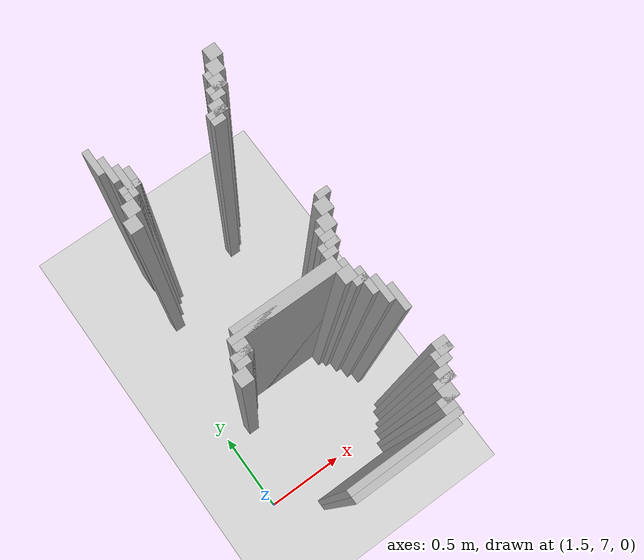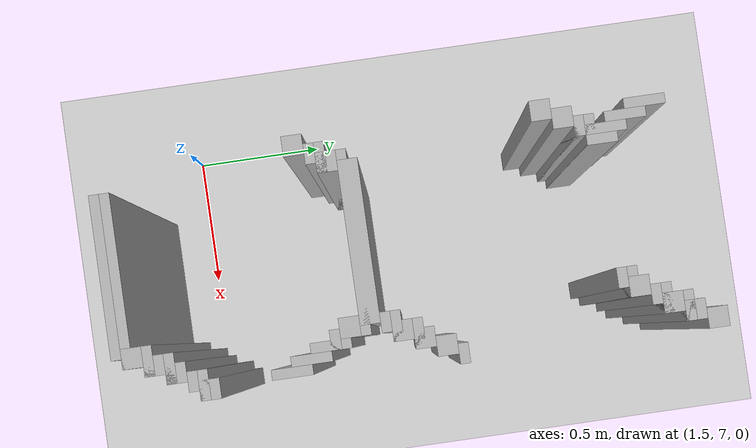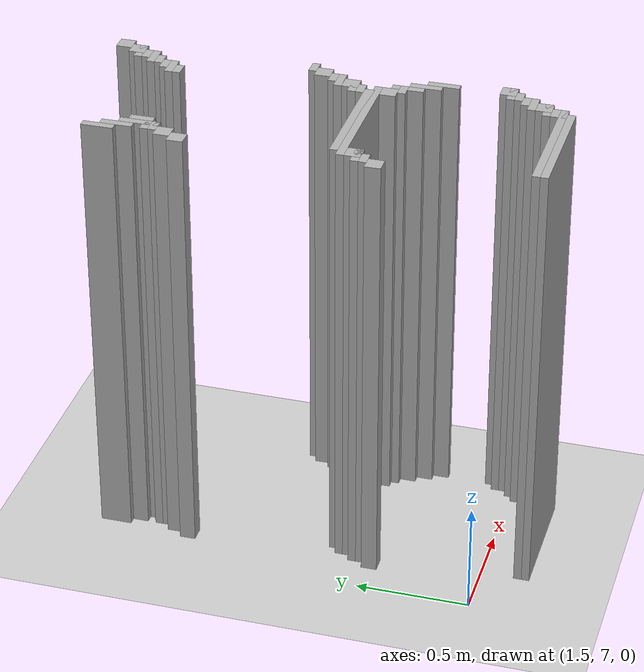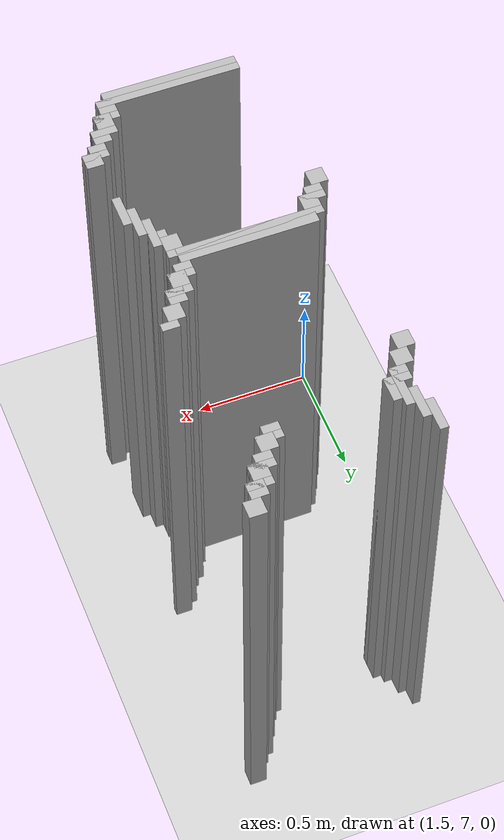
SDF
<sdf version="1.6">
 <world name="slam_world">
  <model name="ground_plane">
   <static>true</static>
   <link name="link">
    <collision name="collision">
     <geometry><plane><normal>0 0 1</normal><size>100 100</size></plane></geometry>
    </collision>
    <visual name="visual">
     <geometry><plane><normal>0 0 1</normal><size>100 100</size></plane></geometry>
     <material>
      <ambient>0.8 0.8 0.8 1</ambient>
      <diffuse>0.8 0.8 0.8 1</diffuse>
      <specular>0.8 0.8 0.8 1</specular>
     </material>
    </visual>
   </link>
  </model>
  <model name="wall_2869">
   <static>true</static>
   <pose>2.436194895591647 8.805104408352667 1.0 0 0 0</pose>
   <link name="link">
    <collision name="collision">
     <geometry><box><size>0.06960556844547564 0.06960556844547564 2.0</size></box></geometry>
    </collision>
    <visual name="visual">
     <geometry><box><size>0.06960556844547564 0.06960556844547564 2.0</size></box></geometry>
     <material><ambient>0.5 0.5 0.5 1</ambient><diffuse>0.7 0.7 0.7 1</diffuse></material>
    </visual>
   </link>
  </model>
  <model name="wall_2882">
   <static>true</static>
   <pose>2.4013921113689096 8.735498839907192 1.0 0 0 0</pose>
   <link name="link">
    <collision name="collision">
     <geometry><box><size>0.06960556844547564 0.06960556844547564 2.0</size></box></geometry>
    </collision>
    <visual name="visual">
     <geometry><box><size>0.06960556844547564 0.06960556844547564 2.0</size></box></geometry>
     <material><ambient>0.5 0.5 0.5 1</ambient><diffuse>0.7 0.7 0.7 1</diffuse></material>
    </visual>
   </link>
  </model>
  <model name="wall_2894">
   <static>true</static>
   <pose>1.6879350348027842 8.665893271461716 1.0 0 0 0</pose>
   <link name="link">
    <collision name="collision">
     <geometry><box><size>0.03480278422273782 0.13921113689095127 2.0</size></box></geometry>
    </collision>
    <visual name="visual">
     <geometry><box><size>0.03480278422273782 0.13921113689095127 2.0</size></box></geometry>
     <material><ambient>0.5 0.5 0.5 1</ambient><diffuse>0.7 0.7 0.7 1</diffuse></material>
    </visual>
   </link>
  </model>
  <model name="wall_2895">
   <static>true</static>
   <pose>2.3839907192575405 8.718097447795824 1.0 0 0 0</pose>
   <link name="link">
    <collision name="collision">
     <geometry><box><size>0.10440835266821345 0.03480278422273782 2.0</size></box></geometry>
    </collision>
    <visual name="visual">
     <geometry><box><size>0.10440835266821345 0.03480278422273782 2.0</size></box></geometry>
     <material><ambient>0.5 0.5 0.5 1</ambient><diffuse>0.7 0.7 0.7 1</diffuse></material>
    </visual>
   </link>
  </model>
  <model name="wall_2906">
   <static>true</static>
   <pose>2.3665893271461718 8.665893271461716 1.0 0 0 0</pose>
   <link name="link">
    <collision name="collision">
     <geometry><box><size>0.06960556844547564 0.06960556844547564 2.0</size></box></geometry>
    </collision>
    <visual name="visual">
     <geometry><box><size>0.06960556844547564 0.06960556844547564 2.0</size></box></geometry>
     <material><ambient>0.5 0.5 0.5 1</ambient><diffuse>0.7 0.7 0.7 1</diffuse></material>
    </visual>
   </link>
  </model>
  <model name="wall_2916">
   <static>true</static>
   <pose>1.722737819025522 8.596287703016241 1.0 0 0 0</pose>
   <link name="link">
    <collision name="collision">
     <geometry><box><size>0.03480278422273782 0.13921113689095127 2.0</size></box></geometry>
    </collision>
    <visual name="visual">
     <geometry><box><size>0.03480278422273782 0.13921113689095127 2.0</size></box></geometry>
     <material><ambient>0.5 0.5 0.5 1</ambient><diffuse>0.7 0.7 0.7 1</diffuse></material>
    </visual>
   </link>
  </model>
  <model name="wall_2917">
   <static>true</static>
   <pose>2.3491879350348026 8.648491879350347 1.0 0 0 0</pose>
   <link name="link">
    <collision name="collision">
     <geometry><box><size>0.10440835266821345 0.03480278422273782 2.0</size></box></geometry>
    </collision>
    <visual name="visual">
     <geometry><box><size>0.10440835266821345 0.03480278422273782 2.0</size></box></geometry>
     <material><ambient>0.5 0.5 0.5 1</ambient><diffuse>0.7 0.7 0.7 1</diffuse></material>
    </visual>
   </link>
  </model>
  <model name="wall_2928">
   <static>true</static>
   <pose>2.331786542923434 8.61368909512761 1.0 0 0 0</pose>
   <link name="link">
    <collision name="collision">
     <geometry><box><size>0.06960556844547564 0.03480278422273782 2.0</size></box></geometry>
    </collision>
    <visual name="visual">
     <geometry><box><size>0.06960556844547564 0.03480278422273782 2.0</size></box></geometry>
     <material><ambient>0.5 0.5 0.5 1</ambient><diffuse>0.7 0.7 0.7 1</diffuse></material>
    </visual>
   </link>
  </model>
  <model name="wall_2935">
   <static>true</static>
   <pose>1.75754060324826 8.509280742459396 1.0 0 0 0</pose>
   <link name="link">
    <collision name="collision">
     <geometry><box><size>0.03480278422273782 0.17401392111368907 2.0</size></box></geometry>
    </collision>
    <visual name="visual">
     <geometry><box><size>0.03480278422273782 0.17401392111368907 2.0</size></box></geometry>
     <material><ambient>0.5 0.5 0.5 1</ambient><diffuse>0.7 0.7 0.7 1</diffuse></material>
    </visual>
   </link>
  </model>
  <model name="wall_2936">
   <static>true</static>
   <pose>2.296983758700696 8.561484918793504 1.0 0 0 0</pose>
   <link name="link">
    <collision name="collision">
     <geometry><box><size>0.06960556844547564 0.06960556844547564 2.0</size></box></geometry>
    </collision>
    <visual name="visual">
     <geometry><box><size>0.06960556844547564 0.06960556844547564 2.0</size></box></geometry>
     <material><ambient>0.5 0.5 0.5 1</ambient><diffuse>0.7 0.7 0.7 1</diffuse></material>
    </visual>
   </link>
  </model>
  <model name="wall_2948">
   <static>true</static>
   <pose>1.7923433874709975 8.509280742459396 1.0 0 0 0</pose>
   <link name="link">
    <collision name="collision">
     <geometry><box><size>0.03480278422273782 0.10440835266821345 2.0</size></box></geometry>
    </collision>
    <visual name="visual">
     <geometry><box><size>0.03480278422273782 0.10440835266821345 2.0</size></box></geometry>
     <material><ambient>0.5 0.5 0.5 1</ambient><diffuse>0.7 0.7 0.7 1</diffuse></material>
    </visual>
   </link>
  </model>
  <model name="wall_2949">
   <static>true</static>
   <pose>2.279582366589327 8.544083526682135 1.0 0 0 0</pose>
   <link name="link">
    <collision name="collision">
     <geometry><box><size>0.10440835266821345 0.03480278422273782 2.0</size></box></geometry>
    </collision>
    <visual name="visual">
     <geometry><box><size>0.10440835266821345 0.03480278422273782 2.0</size></box></geometry>
     <material><ambient>0.5 0.5 0.5 1</ambient><diffuse>0.7 0.7 0.7 1</diffuse></material>
    </visual>
   </link>
  </model>
  <model name="wall_2961">
   <static>true</static>
   <pose>2.262180974477958 8.509280742459396 1.0 0 0 0</pose>
   <link name="link">
    <collision name="collision">
     <geometry><box><size>0.06960556844547564 0.03480278422273782 2.0</size></box></geometry>
    </collision>
    <visual name="visual">
     <geometry><box><size>0.06960556844547564 0.03480278422273782 2.0</size></box></geometry>
     <material><ambient>0.5 0.5 0.5 1</ambient><diffuse>0.7 0.7 0.7 1</diffuse></material>
    </visual>
   </link>
  </model>
  <model name="wall_2973">
   <static>true</static>
   <pose>1.75754060324826 8.474477958236658 1.0 0 0 0</pose>
   <link name="link">
    <collision name="collision">
     <geometry><box><size>0.10440835266821345 0.03480278422273782 2.0</size></box></geometry>
    </collision>
    <visual name="visual">
     <geometry><box><size>0.10440835266821345 0.03480278422273782 2.0</size></box></geometry>
     <material><ambient>0.5 0.5 0.5 1</ambient><diffuse>0.7 0.7 0.7 1</diffuse></material>
    </visual>
   </link>
  </model>
  <model name="wall_2987">
   <static>true</static>
   <pose>1.740139211136891 8.43967517401392 1.0 0 0 0</pose>
   <link name="link">
    <collision name="collision">
     <geometry><box><size>0.06960556844547564 0.03480278422273782 2.0</size></box></geometry>
    </collision>
    <visual name="visual">
     <geometry><box><size>0.06960556844547564 0.03480278422273782 2.0</size></box></geometry>
     <material><ambient>0.5 0.5 0.5 1</ambient><diffuse>0.7 0.7 0.7 1</diffuse></material>
    </visual>
   </link>
  </model>
  <model name="wall_3002">
   <static>true</static>
   <pose>1.705336426914153 8.387470997679815 1.0 0 0 0</pose>
   <link name="link">
    <collision name="collision">
     <geometry><box><size>0.06960556844547564 0.06960556844547564 2.0</size></box></geometry>
    </collision>
    <visual name="visual">
     <geometry><box><size>0.06960556844547564 0.06960556844547564 2.0</size></box></geometry>
     <material><ambient>0.5 0.5 0.5 1</ambient><diffuse>0.7 0.7 0.7 1</diffuse></material>
    </visual>
   </link>
  </model>
  <model name="wall_3017">
   <static>true</static>
   <pose>1.6705336426914152 8.317865429234338 1.0 0 0 0</pose>
   <link name="link">
    <collision name="collision">
     <geometry><box><size>0.06960556844547564 0.06960556844547564 2.0</size></box></geometry>
    </collision>
    <visual name="visual">
     <geometry><box><size>0.06960556844547564 0.06960556844547564 2.0</size></box></geometry>
     <material><ambient>0.5 0.5 0.5 1</ambient><diffuse>0.7 0.7 0.7 1</diffuse></material>
    </visual>
   </link>
  </model>
  <model name="wall_3168">
   <static>true</static>
   <pose>2.436194895591647 7.952436194895592 1.0 0 0 0</pose>
   <link name="link">
    <collision name="collision">
     <geometry><box><size>0.06960556844547564 0.03480278422273782 2.0</size></box></geometry>
    </collision>
    <visual name="visual">
     <geometry><box><size>0.06960556844547564 0.03480278422273782 2.0</size></box></geometry>
     <material><ambient>0.5 0.5 0.5 1</ambient><diffuse>0.7 0.7 0.7 1</diffuse></material>
    </visual>
   </link>
  </model>
  <model name="wall_3180">
   <static>true</static>
   <pose>2.4013921113689096 7.900232018561485 1.0 0 0 0</pose>
   <link name="link">
    <collision name="collision">
     <geometry><box><size>0.06960556844547564 0.06960556844547564 2.0</size></box></geometry>
    </collision>
    <visual name="visual">
     <geometry><box><size>0.06960556844547564 0.06960556844547564 2.0</size></box></geometry>
     <material><ambient>0.5 0.5 0.5 1</ambient><diffuse>0.7 0.7 0.7 1</diffuse></material>
    </visual>
   </link>
  </model>
  <model name="wall_3196">
   <static>true</static>
   <pose>2.3665893271461718 7.830626450116009 1.0 0 0 0</pose>
   <link name="link">
    <collision name="collision">
     <geometry><box><size>0.06960556844547564 0.06960556844547564 2.0</size></box></geometry>
    </collision>
    <visual name="visual">
     <geometry><box><size>0.06960556844547564 0.06960556844547564 2.0</size></box></geometry>
     <material><ambient>0.5 0.5 0.5 1</ambient><diffuse>0.7 0.7 0.7 1</diffuse></material>
    </visual>
   </link>
  </model>
  <model name="wall_3212">
   <static>true</static>
   <pose>2.3491879350348026 7.81322505800464 1.0 0 0 0</pose>
   <link name="link">
    <collision name="collision">
     <geometry><box><size>0.10440835266821345 0.03480278422273782 2.0</size></box></geometry>
    </collision>
    <visual name="visual">
     <geometry><box><size>0.10440835266821345 0.03480278422273782 2.0</size></box></geometry>
     <material><ambient>0.5 0.5 0.5 1</ambient><diffuse>0.7 0.7 0.7 1</diffuse></material>
    </visual>
   </link>
  </model>
  <model name="wall_3227">
   <static>true</static>
   <pose>2.331786542923434 7.761020881670533 1.0 0 0 0</pose>
   <link name="link">
    <collision name="collision">
     <geometry><box><size>0.06960556844547564 0.06960556844547564 2.0</size></box></geometry>
    </collision>
    <visual name="visual">
     <geometry><box><size>0.06960556844547564 0.06960556844547564 2.0</size></box></geometry>
     <material><ambient>0.5 0.5 0.5 1</ambient><diffuse>0.7 0.7 0.7 1</diffuse></material>
    </visual>
   </link>
  </model>
  <model name="wall_3237">
   <static>true</static>
   <pose>2.3143851508120648 7.743619489559165 1.0 0 0 0</pose>
   <link name="link">
    <collision name="collision">
     <geometry><box><size>0.10440835266821345 0.03480278422273782 2.0</size></box></geometry>
    </collision>
    <visual name="visual">
     <geometry><box><size>0.10440835266821345 0.03480278422273782 2.0</size></box></geometry>
     <material><ambient>0.5 0.5 0.5 1</ambient><diffuse>0.7 0.7 0.7 1</diffuse></material>
    </visual>
   </link>
  </model>
  <model name="wall_3252">
   <static>true</static>
   <pose>2.296983758700696 7.708816705336426 1.0 0 0 0</pose>
   <link name="link">
    <collision name="collision">
     <geometry><box><size>0.06960556844547564 0.03480278422273782 2.0</size></box></geometry>
    </collision>
    <visual name="visual">
     <geometry><box><size>0.06960556844547564 0.03480278422273782 2.0</size></box></geometry>
     <material><ambient>0.5 0.5 0.5 1</ambient><diffuse>0.7 0.7 0.7 1</diffuse></material>
    </visual>
   </link>
  </model>
  <model name="wall_3262">
   <static>true</static>
   <pose>2.0185614849187936 7.65661252900232 1.0 0 0 0</pose>
   <link name="link">
    <collision name="collision">
     <geometry><box><size>0.5568445475638051 0.06960556844547564 2.0</size></box></geometry>
    </collision>
    <visual name="visual">
     <geometry><box><size>0.5568445475638051 0.06960556844547564 2.0</size></box></geometry>
     <material><ambient>0.5 0.5 0.5 1</ambient><diffuse>0.7 0.7 0.7 1</diffuse></material>
    </visual>
   </link>
  </model>
  <model name="wall_3278">
   <static>true</static>
   <pose>2.0185614849187936 7.6392111368909505 1.0 0 0 0</pose>
   <link name="link">
    <collision name="collision">
     <geometry><box><size>0.6264501160092807 0.03480278422273782 2.0</size></box></geometry>
    </collision>
    <visual name="visual">
     <geometry><box><size>0.6264501160092807 0.03480278422273782 2.0</size></box></geometry>
     <material><ambient>0.5 0.5 0.5 1</ambient><diffuse>0.7 0.7 0.7 1</diffuse></material>
    </visual>
   </link>
  </model>
  <model name="wall_3292">
   <static>true</static>
   <pose>1.740139211136891 7.587006960556844 1.0 0 0 0</pose>
   <link name="link">
    <collision name="collision">
     <geometry><box><size>0.06960556844547564 0.06960556844547564 2.0</size></box></geometry>
    </collision>
    <visual name="visual">
     <geometry><box><size>0.06960556844547564 0.06960556844547564 2.0</size></box></geometry>
     <material><ambient>0.5 0.5 0.5 1</ambient><diffuse>0.7 0.7 0.7 1</diffuse></material>
    </visual>
   </link>
  </model>
  <model name="wall_3293">
   <static>true</static>
   <pose>2.296983758700696 7.587006960556844 1.0 0 0 0</pose>
   <link name="link">
    <collision name="collision">
     <geometry><box><size>0.06960556844547564 0.06960556844547564 2.0</size></box></geometry>
    </collision>
    <visual name="visual">
     <geometry><box><size>0.06960556844547564 0.06960556844547564 2.0</size></box></geometry>
     <material><ambient>0.5 0.5 0.5 1</ambient><diffuse>0.7 0.7 0.7 1</diffuse></material>
    </visual>
   </link>
  </model>
  <model name="wall_3308">
   <static>true</static>
   <pose>1.722737819025522 7.569605568445476 1.0 0 0 0</pose>
   <link name="link">
    <collision name="collision">
     <geometry><box><size>0.10440835266821345 0.03480278422273782 2.0</size></box></geometry>
    </collision>
    <visual name="visual">
     <geometry><box><size>0.10440835266821345 0.03480278422273782 2.0</size></box></geometry>
     <material><ambient>0.5 0.5 0.5 1</ambient><diffuse>0.7 0.7 0.7 1</diffuse></material>
    </visual>
   </link>
  </model>
  <model name="wall_3309">
   <static>true</static>
   <pose>2.3491879350348026 7.517401392111369 1.0 0 0 0</pose>
   <link name="link">
    <collision name="collision">
     <geometry><box><size>0.03480278422273782 0.13921113689095127 2.0</size></box></geometry>
    </collision>
    <visual name="visual">
     <geometry><box><size>0.03480278422273782 0.13921113689095127 2.0</size></box></geometry>
     <material><ambient>0.5 0.5 0.5 1</ambient><diffuse>0.7 0.7 0.7 1</diffuse></material>
    </visual>
   </link>
  </model>
  <model name="wall_3323">
   <static>true</static>
   <pose>1.705336426914153 7.534802784222737 1.0 0 0 0</pose>
   <link name="link">
    <collision name="collision">
     <geometry><box><size>0.06960556844547564 0.03480278422273782 2.0</size></box></geometry>
    </collision>
    <visual name="visual">
     <geometry><box><size>0.06960556844547564 0.03480278422273782 2.0</size></box></geometry>
     <material><ambient>0.5 0.5 0.5 1</ambient><diffuse>0.7 0.7 0.7 1</diffuse></material>
    </visual>
   </link>
  </model>
  <model name="wall_3324">
   <static>true</static>
   <pose>2.331786542923434 7.534802784222737 1.0 0 0 0</pose>
   <link name="link">
    <collision name="collision">
     <geometry><box><size>0.06960556844547564 0.03480278422273782 2.0</size></box></geometry>
    </collision>
    <visual name="visual">
     <geometry><box><size>0.06960556844547564 0.03480278422273782 2.0</size></box></geometry>
     <material><ambient>0.5 0.5 0.5 1</ambient><diffuse>0.7 0.7 0.7 1</diffuse></material>
    </visual>
   </link>
  </model>
  <model name="wall_3335">
   <static>true</static>
   <pose>1.6705336426914152 7.48259860788863 1.0 0 0 0</pose>
   <link name="link">
    <collision name="collision">
     <geometry><box><size>0.06960556844547564 0.06960556844547564 2.0</size></box></geometry>
    </collision>
    <visual name="visual">
     <geometry><box><size>0.06960556844547564 0.06960556844547564 2.0</size></box></geometry>
     <material><ambient>0.5 0.5 0.5 1</ambient><diffuse>0.7 0.7 0.7 1</diffuse></material>
    </visual>
   </link>
  </model>
  <model name="wall_3336">
   <static>true</static>
   <pose>2.3839907192575405 7.447795823665893 1.0 0 0 0</pose>
   <link name="link">
    <collision name="collision">
     <geometry><box><size>0.03480278422273782 0.13921113689095127 2.0</size></box></geometry>
    </collision>
    <visual name="visual">
     <geometry><box><size>0.03480278422273782 0.13921113689095127 2.0</size></box></geometry>
     <material><ambient>0.5 0.5 0.5 1</ambient><diffuse>0.7 0.7 0.7 1</diffuse></material>
    </visual>
   </link>
  </model>
  <model name="wall_3352">
   <static>true</static>
   <pose>2.4187935034802783 7.378190255220417 1.0 0 0 0</pose>
   <link name="link">
    <collision name="collision">
     <geometry><box><size>0.03480278422273782 0.13921113689095127 2.0</size></box></geometry>
    </collision>
    <visual name="visual">
     <geometry><box><size>0.03480278422273782 0.13921113689095127 2.0</size></box></geometry>
     <material><ambient>0.5 0.5 0.5 1</ambient><diffuse>0.7 0.7 0.7 1</diffuse></material>
    </visual>
   </link>
  </model>
  <model name="wall_3453">
   <static>true</static>
   <pose>2.436194895591647 7.099767981438514 1.0 0 0 0</pose>
   <link name="link">
    <collision name="collision">
     <geometry><box><size>0.06960556844547564 0.06960556844547564 2.0</size></box></geometry>
    </collision>
    <visual name="visual">
     <geometry><box><size>0.06960556844547564 0.06960556844547564 2.0</size></box></geometry>
     <material><ambient>0.5 0.5 0.5 1</ambient><diffuse>0.7 0.7 0.7 1</diffuse></material>
    </visual>
   </link>
  </model>
  <model name="wall_3465">
   <static>true</static>
   <pose>2.4187935034802783 7.082366589327146 1.0 0 0 0</pose>
   <link name="link">
    <collision name="collision">
     <geometry><box><size>0.10440835266821345 0.03480278422273782 2.0</size></box></geometry>
    </collision>
    <visual name="visual">
     <geometry><box><size>0.10440835266821345 0.03480278422273782 2.0</size></box></geometry>
     <material><ambient>0.5 0.5 0.5 1</ambient><diffuse>0.7 0.7 0.7 1</diffuse></material>
    </visual>
   </link>
  </model>
  <model name="wall_3476">
   <static>true</static>
   <pose>2.4013921113689096 7.047563805104408 1.0 0 0 0</pose>
   <link name="link">
    <collision name="collision">
     <geometry><box><size>0.06960556844547564 0.03480278422273782 2.0</size></box></geometry>
    </collision>
    <visual name="visual">
     <geometry><box><size>0.06960556844547564 0.03480278422273782 2.0</size></box></geometry>
     <material><ambient>0.5 0.5 0.5 1</ambient><diffuse>0.7 0.7 0.7 1</diffuse></material>
    </visual>
   </link>
  </model>
  <model name="wall_3484">
   <static>true</static>
   <pose>2.3665893271461718 6.995359628770301 1.0 0 0 0</pose>
   <link name="link">
    <collision name="collision">
     <geometry><box><size>0.06960556844547564 0.06960556844547564 2.0</size></box></geometry>
    </collision>
    <visual name="visual">
     <geometry><box><size>0.06960556844547564 0.06960556844547564 2.0</size></box></geometry>
     <material><ambient>0.5 0.5 0.5 1</ambient><diffuse>0.7 0.7 0.7 1</diffuse></material>
    </visual>
   </link>
  </model>
  <model name="wall_3495">
   <static>true</static>
   <pose>2.3491879350348026 6.977958236658933 1.0 0 0 0</pose>
   <link name="link">
    <collision name="collision">
     <geometry><box><size>0.10440835266821345 0.03480278422273782 2.0</size></box></geometry>
    </collision>
    <visual name="visual">
     <geometry><box><size>0.10440835266821345 0.03480278422273782 2.0</size></box></geometry>
     <material><ambient>0.5 0.5 0.5 1</ambient><diffuse>0.7 0.7 0.7 1</diffuse></material>
    </visual>
   </link>
  </model>
  <model name="wall_3503">
   <static>true</static>
   <pose>2.331786542923434 6.9257540603248255 1.0 0 0 0</pose>
   <link name="link">
    <collision name="collision">
     <geometry><box><size>0.06960556844547564 0.06960556844547564 2.0</size></box></geometry>
    </collision>
    <visual name="visual">
     <geometry><box><size>0.06960556844547564 0.06960556844547564 2.0</size></box></geometry>
     <material><ambient>0.5 0.5 0.5 1</ambient><diffuse>0.7 0.7 0.7 1</diffuse></material>
    </visual>
   </link>
  </model>
  <model name="wall_3515">
   <static>true</static>
   <pose>2.3143851508120648 6.908352668213457 1.0 0 0 0</pose>
   <link name="link">
    <collision name="collision">
     <geometry><box><size>0.10440835266821345 0.03480278422273782 2.0</size></box></geometry>
    </collision>
    <visual name="visual">
     <geometry><box><size>0.10440835266821345 0.03480278422273782 2.0</size></box></geometry>
     <material><ambient>0.5 0.5 0.5 1</ambient><diffuse>0.7 0.7 0.7 1</diffuse></material>
    </visual>
   </link>
  </model>
  <model name="wall_3526">
   <static>true</static>
   <pose>2.296983758700696 6.85614849187935 1.0 0 0 0</pose>
   <link name="link">
    <collision name="collision">
     <geometry><box><size>0.06960556844547564 0.06960556844547564 2.0</size></box></geometry>
    </collision>
    <visual name="visual">
     <geometry><box><size>0.06960556844547564 0.06960556844547564 2.0</size></box></geometry>
     <material><ambient>0.5 0.5 0.5 1</ambient><diffuse>0.7 0.7 0.7 1</diffuse></material>
    </visual>
   </link>
  </model>
  <model name="wall_3534">
   <static>true</static>
   <pose>2.0359628770301623 6.838747099767981 1.0 0 0 0</pose>
   <link name="link">
    <collision name="collision">
     <geometry><box><size>0.5916473317865429 0.03480278422273782 2.0</size></box></geometry>
    </collision>
    <visual name="visual">
     <geometry><box><size>0.5916473317865429 0.03480278422273782 2.0</size></box></geometry>
     <material><ambient>0.5 0.5 0.5 1</ambient><diffuse>0.7 0.7 0.7 1</diffuse></material>
    </visual>
   </link>
  </model>
  <model name="wall_3547">
   <static>true</static>
   <pose>2.0185614849187936 6.803944315545244 1.0 0 0 0</pose>
   <link name="link">
    <collision name="collision">
     <geometry><box><size>0.5568445475638051 0.03480278422273782 2.0</size></box></geometry>
    </collision>
    <visual name="visual">
     <geometry><box><size>0.5568445475638051 0.03480278422273782 2.0</size></box></geometry>
     <material><ambient>0.5 0.5 0.5 1</ambient><diffuse>0.7 0.7 0.7 1</diffuse></material>
    </visual>
   </link>
  </model>
 </world>
</sdf>
